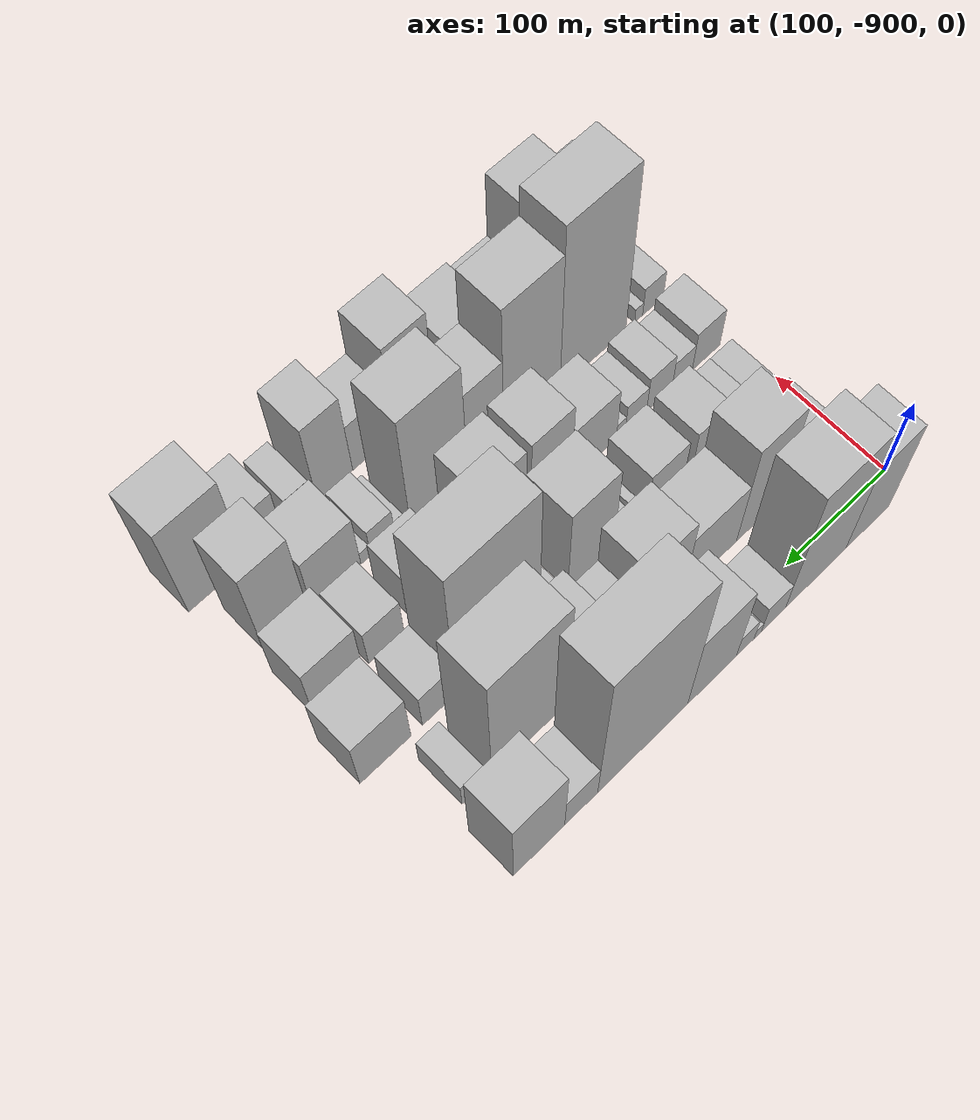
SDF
<sdf version="1.6">
 <world name="default">
  <model name="building_1">
   <static>1</static>
   <pose>100.0000 -858.8363 0 0.000000 0.000000 0.000000</pose>
   <link name="link">
    <pose>0 0 63.00 0 0 0</pose>
    <collision name="collision"><geometry><box><size>40.0000 44.3274 126.0000</size></box></geometry></collision>
    <visual name="visual">
     <cast_shadows>0</cast_shadows>
     <geometry><box><size>40.0000 44.3274 126.0000</size></box></geometry>
     <material>
      <script>
       <uri>model://HANNAS_wall/materials/scripts</uri>
       <uri>model://HANNAS_wall/materials/textures</uri>
       <name>vrc/HANNAS_wall</name>
      </script>
     </material>
    </visual>
   </link>
  </model>
  <model name="building_2">
   <static>1</static>
   <pose>100.0000 -806.4350 0 0.000000 0.000000 0.000000</pose>
   <link name="link">
    <pose>0 0 90.00 0 0 0</pose>
    <collision name="collision"><geometry><box><size>40.0000 60.4753 180.0000</size></box></geometry></collision>
    <visual name="visual">
     <cast_shadows>0</cast_shadows>
     <geometry><box><size>40.0000 60.4753 180.0000</size></box></geometry>
     <material>
      <script>
       <uri>model://HANNAS_wall/materials/scripts</uri>
       <uri>model://HANNAS_wall/materials/textures</uri>
       <name>vrc/HANNAS_wall</name>
      </script>
     </material>
    </visual>
   </link>
  </model>
  <model name="building_3">
   <static>1</static>
   <pose>100.0000 -764.4830 0 0.000000 0.000000 0.000000</pose>
   <link name="link">
    <pose>0 0 21.00 0 0 0</pose>
    <collision name="collision"><geometry><box><size>40.0000 23.4287 42.0000</size></box></geometry></collision>
    <visual name="visual">
     <cast_shadows>0</cast_shadows>
     <geometry><box><size>40.0000 23.4287 42.0000</size></box></geometry>
     <material>
      <script>
       <uri>model://HANNAS_wall/materials/scripts</uri>
       <uri>model://HANNAS_wall/materials/textures</uri>
       <name>vrc/HANNAS_wall</name>
      </script>
     </material>
    </visual>
   </link>
  </model>
  <model name="building_4">
   <static>1</static>
   <pose>100.0000 -749.1663 0 0.000000 0.000000 0.000000</pose>
   <link name="link">
    <pose>0 0 7.50 0 0 0</pose>
    <collision name="collision"><geometry><box><size>40.0000 7.2047 15.0000</size></box></geometry></collision>
    <visual name="visual">
     <cast_shadows>0</cast_shadows>
     <geometry><box><size>40.0000 7.2047 15.0000</size></box></geometry>
     <material>
      <script>
       <uri>model://HANNAS_wall/materials/scripts</uri>
       <uri>model://HANNAS_wall/materials/textures</uri>
       <name>vrc/HANNAS_wall</name>
      </script>
     </material>
    </visual>
   </link>
  </model>
  <model name="building_5">
   <static>1</static>
   <pose>100.0000 -736.9335 0 0.000000 0.000000 0.000000</pose>
   <link name="link">
    <pose>0 0 16.50 0 0 0</pose>
    <collision name="collision"><geometry><box><size>40.0000 17.2609 33.0000</size></box></geometry></collision>
    <visual name="visual">
     <cast_shadows>0</cast_shadows>
     <geometry><box><size>40.0000 17.2609 33.0000</size></box></geometry>
     <material>
      <script>
       <uri>model://HANNAS_wall/materials/scripts</uri>
       <uri>model://HANNAS_wall/materials/textures</uri>
       <name>vrc/HANNAS_wall</name>
      </script>
     </material>
    </visual>
   </link>
  </model>
  <model name="building_6">
   <static>1</static>
   <pose>100.0000 -705.0831 0 0.000000 0.000000 0.000000</pose>
   <link name="link">
    <pose>0 0 58.50 0 0 0</pose>
    <collision name="collision"><geometry><box><size>40.0000 46.4398 117.0000</size></box></geometry></collision>
    <visual name="visual">
     <cast_shadows>0</cast_shadows>
     <geometry><box><size>40.0000 46.4398 117.0000</size></box></geometry>
     <material>
      <script>
       <uri>model://HANNAS_wall/materials/scripts</uri>
       <uri>model://HANNAS_wall/materials/textures</uri>
       <name>vrc/HANNAS_wall</name>
      </script>
     </material>
    </visual>
   </link>
  </model>
  <model name="building_7">
   <static>1</static>
   <pose>100.0000 -640.3496 0 0.000000 0.000000 0.000000</pose>
   <link name="link">
    <pose>0 0 111.00 0 0 0</pose>
    <collision name="collision"><geometry><box><size>40.0000 83.0273 222.0000</size></box></geometry></collision>
    <visual name="visual">
     <cast_shadows>0</cast_shadows>
     <geometry><box><size>40.0000 83.0273 222.0000</size></box></geometry>
     <material>
      <script>
       <uri>model://HANNAS_wall/materials/scripts</uri>
       <uri>model://HANNAS_wall/materials/textures</uri>
       <name>vrc/HANNAS_wall</name>
      </script>
     </material>
    </visual>
   </link>
  </model>
  <model name="building_8">
   <static>1</static>
   <pose>100.0000 -584.0947 0 0.000000 0.000000 0.000000</pose>
   <link name="link">
    <pose>0 0 27.00 0 0 0</pose>
    <collision name="collision"><geometry><box><size>40.0000 29.4825 54.0000</size></box></geometry></collision>
    <visual name="visual">
     <cast_shadows>0</cast_shadows>
     <geometry><box><size>40.0000 29.4825 54.0000</size></box></geometry>
     <material>
      <script>
       <uri>model://HANNAS_wall/materials/scripts</uri>
       <uri>model://HANNAS_wall/materials/textures</uri>
       <name>vrc/HANNAS_wall</name>
      </script>
     </material>
    </visual>
   </link>
  </model>
  <model name="building_9">
   <static>1</static>
   <pose>100.0000 -546.7475 0 0.000000 0.000000 0.000000</pose>
   <link name="link">
    <pose>0 0 57.00 0 0 0</pose>
    <collision name="collision"><geometry><box><size>40.0000 45.2120 114.0000</size></box></geometry></collision>
    <visual name="visual">
     <cast_shadows>0</cast_shadows>
     <geometry><box><size>40.0000 45.2120 114.0000</size></box></geometry>
     <material>
      <script>
       <uri>model://HANNAS_wall/materials/scripts</uri>
       <uri>model://HANNAS_wall/materials/textures</uri>
       <name>vrc/HANNAS_wall</name>
      </script>
     </material>
    </visual>
   </link>
  </model>
  <model name="building_48">
   <static>1</static>
   <pose>155.0000 -880.5928 0 0.000000 0.000000 0.000000</pose>
   <link name="link">
    <pose>0 0 16.50 0 0 0</pose>
    <collision name="collision"><geometry><box><size>40.0000 18.8144 33.0000</size></box></geometry></collision>
    <visual name="visual">
     <cast_shadows>0</cast_shadows>
     <geometry><box><size>40.0000 18.8144 33.0000</size></box></geometry>
     <material>
      <script>
       <uri>model://HANNAS_wall/materials/scripts</uri>
       <uri>model://HANNAS_wall/materials/textures</uri>
       <name>vrc/HANNAS_wall</name>
      </script>
     </material>
    </visual>
   </link>
  </model>
  <model name="building_49">
   <static>1</static>
   <pose>155.0000 -852.6355 0 0.000000 0.000000 0.000000</pose>
   <link name="link">
    <pose>0 0 36.00 0 0 0</pose>
    <collision name="collision"><geometry><box><size>40.0000 37.1003 72.0000</size></box></geometry></collision>
    <visual name="visual">
     <cast_shadows>0</cast_shadows>
     <geometry><box><size>40.0000 37.1003 72.0000</size></box></geometry>
     <material>
      <script>
       <uri>model://HANNAS_wall/materials/scripts</uri>
       <uri>model://HANNAS_wall/materials/textures</uri>
       <name>vrc/HANNAS_wall</name>
      </script>
     </material>
    </visual>
   </link>
  </model>
  <model name="building_50">
   <static>1</static>
   <pose>155.0000 -809.5577 0 0.000000 0.000000 0.000000</pose>
   <link name="link">
    <pose>0 0 70.50 0 0 0</pose>
    <collision name="collision"><geometry><box><size>40.0000 43.0553 141.0000</size></box></geometry></collision>
    <visual name="visual">
     <cast_shadows>0</cast_shadows>
     <geometry><box><size>40.0000 43.0553 141.0000</size></box></geometry>
     <material>
      <script>
       <uri>model://HANNAS_wall/materials/scripts</uri>
       <uri>model://HANNAS_wall/materials/textures</uri>
       <name>vrc/HANNAS_wall</name>
      </script>
     </material>
    </visual>
   </link>
  </model>
  <model name="building_51">
   <static>1</static>
   <pose>155.0000 -762.1314 0 0.000000 0.000000 0.000000</pose>
   <link name="link">
    <pose>0 0 45.00 0 0 0</pose>
    <collision name="collision"><geometry><box><size>40.0000 51.7973 90.0000</size></box></geometry></collision>
    <visual name="visual">
     <cast_shadows>0</cast_shadows>
     <geometry><box><size>40.0000 51.7973 90.0000</size></box></geometry>
     <material>
      <script>
       <uri>model://HANNAS_wall/materials/scripts</uri>
       <uri>model://HANNAS_wall/materials/textures</uri>
       <name>vrc/HANNAS_wall</name>
      </script>
     </material>
    </visual>
   </link>
  </model>
  <model name="building_52">
   <static>1</static>
   <pose>155.0000 -714.4206 0 0.000000 0.000000 0.000000</pose>
   <link name="link">
    <pose>0 0 58.50 0 0 0</pose>
    <collision name="collision"><geometry><box><size>40.0000 43.6243 117.0000</size></box></geometry></collision>
    <visual name="visual">
     <cast_shadows>0</cast_shadows>
     <geometry><box><size>40.0000 43.6243 117.0000</size></box></geometry>
     <material>
      <script>
       <uri>model://HANNAS_wall/materials/scripts</uri>
       <uri>model://HANNAS_wall/materials/textures</uri>
       <name>vrc/HANNAS_wall</name>
      </script>
     </material>
    </visual>
   </link>
  </model>
  <model name="building_53">
   <static>1</static>
   <pose>155.0000 -676.4855 0 0.000000 0.000000 0.000000</pose>
   <link name="link">
    <pose>0 0 31.50 0 0 0</pose>
    <collision name="collision"><geometry><box><size>40.0000 32.2459 63.0000</size></box></geometry></collision>
    <visual name="visual">
     <cast_shadows>0</cast_shadows>
     <geometry><box><size>40.0000 32.2459 63.0000</size></box></geometry>
     <material>
      <script>
       <uri>model://HANNAS_wall/materials/scripts</uri>
       <uri>model://HANNAS_wall/materials/textures</uri>
       <name>vrc/HANNAS_wall</name>
      </script>
     </material>
    </visual>
   </link>
  </model>
  <model name="building_54">
   <static>1</static>
   <pose>155.0000 -643.7673 0 0.000000 0.000000 0.000000</pose>
   <link name="link">
    <pose>0 0 52.50 0 0 0</pose>
    <collision name="collision"><geometry><box><size>40.0000 33.1904 105.0000</size></box></geometry></collision>
    <visual name="visual">
     <cast_shadows>0</cast_shadows>
     <geometry><box><size>40.0000 33.1904 105.0000</size></box></geometry>
     <material>
      <script>
       <uri>model://HANNAS_wall/materials/scripts</uri>
       <uri>model://HANNAS_wall/materials/textures</uri>
       <name>vrc/HANNAS_wall</name>
      </script>
     </material>
    </visual>
   </link>
  </model>
  <model name="building_55">
   <static>1</static>
   <pose>155.0000 -593.0273 0 0.000000 0.000000 0.000000</pose>
   <link name="link">
    <pose>0 0 90.00 0 0 0</pose>
    <collision name="collision"><geometry><box><size>40.0000 68.2895 180.0000</size></box></geometry></collision>
    <visual name="visual">
     <cast_shadows>0</cast_shadows>
     <geometry><box><size>40.0000 68.2895 180.0000</size></box></geometry>
     <material>
      <script>
       <uri>model://HANNAS_wall/materials/scripts</uri>
       <uri>model://HANNAS_wall/materials/textures</uri>
       <name>vrc/HANNAS_wall</name>
      </script>
     </material>
    </visual>
   </link>
  </model>
  <model name="building_56">
   <static>1</static>
   <pose>155.0000 -542.8189 0 0.000000 0.000000 0.000000</pose>
   <link name="link">
    <pose>0 0 19.50 0 0 0</pose>
    <collision name="collision"><geometry><box><size>40.0000 20.1275 39.0000</size></box></geometry></collision>
    <visual name="visual">
     <cast_shadows>0</cast_shadows>
     <geometry><box><size>40.0000 20.1275 39.0000</size></box></geometry>
     <material>
      <script>
       <uri>model://HANNAS_wall/materials/scripts</uri>
       <uri>model://HANNAS_wall/materials/textures</uri>
       <name>vrc/HANNAS_wall</name>
      </script>
     </material>
    </visual>
   </link>
  </model>
  <model name="building_100">
   <static>1</static>
   <pose>210.0000 -869.2173 0 0.000000 0.000000 0.000000</pose>
   <link name="link">
    <pose>0 0 21.00 0 0 0</pose>
    <collision name="collision"><geometry><box><size>40.0000 21.5654 42.0000</size></box></geometry></collision>
    <visual name="visual">
     <cast_shadows>0</cast_shadows>
     <geometry><box><size>40.0000 21.5654 42.0000</size></box></geometry>
     <material>
      <script>
       <uri>model://HANNAS_wall/materials/scripts</uri>
       <uri>model://HANNAS_wall/materials/textures</uri>
       <name>vrc/HANNAS_wall</name>
      </script>
     </material>
    </visual>
   </link>
  </model>
  <model name="building_101">
   <static>1</static>
   <pose>210.0000 -846.8099 0 0.000000 0.000000 0.000000</pose>
   <link name="link">
    <pose>0 0 21.00 0 0 0</pose>
    <collision name="collision"><geometry><box><size>40.0000 23.2495 42.0000</size></box></geometry></collision>
    <visual name="visual">
     <cast_shadows>0</cast_shadows>
     <geometry><box><size>40.0000 23.2495 42.0000</size></box></geometry>
     <material>
      <script>
       <uri>model://HANNAS_wall/materials/scripts</uri>
       <uri>model://HANNAS_wall/materials/textures</uri>
       <name>vrc/HANNAS_wall</name>
      </script>
     </material>
    </visual>
   </link>
  </model>
  <model name="building_102">
   <static>1</static>
   <pose>210.0000 -818.6937 0 0.000000 0.000000 0.000000</pose>
   <link name="link">
    <pose>0 0 31.50 0 0 0</pose>
    <collision name="collision"><geometry><box><size>40.0000 32.9828 63.0000</size></box></geometry></collision>
    <visual name="visual">
     <cast_shadows>0</cast_shadows>
     <geometry><box><size>40.0000 32.9828 63.0000</size></box></geometry>
     <material>
      <script>
       <uri>model://HANNAS_wall/materials/scripts</uri>
       <uri>model://HANNAS_wall/materials/textures</uri>
       <name>vrc/HANNAS_wall</name>
      </script>
     </material>
    </visual>
   </link>
  </model>
  <model name="building_103">
   <static>1</static>
   <pose>210.0000 -776.3366 0 0.000000 0.000000 0.000000</pose>
   <link name="link">
    <pose>0 0 31.50 0 0 0</pose>
    <collision name="collision"><geometry><box><size>40.0000 35.7315 63.0000</size></box></geometry></collision>
    <visual name="visual">
     <cast_shadows>0</cast_shadows>
     <geometry><box><size>40.0000 35.7315 63.0000</size></box></geometry>
     <material>
      <script>
       <uri>model://HANNAS_wall/materials/scripts</uri>
       <uri>model://HANNAS_wall/materials/textures</uri>
       <name>vrc/HANNAS_wall</name>
      </script>
     </material>
    </visual>
   </link>
  </model>
  <model name="building_104">
   <static>1</static>
   <pose>210.0000 -754.9512 0 0.000000 0.000000 0.000000</pose>
   <link name="link">
    <pose>0 0 7.50 0 0 0</pose>
    <collision name="collision"><geometry><box><size>40.0000 7.0394 15.0000</size></box></geometry></collision>
    <visual name="visual">
     <cast_shadows>0</cast_shadows>
     <geometry><box><size>40.0000 7.0394 15.0000</size></box></geometry>
     <material>
      <script>
       <uri>model://HANNAS_wall/materials/scripts</uri>
       <uri>model://HANNAS_wall/materials/textures</uri>
       <name>vrc/HANNAS_wall</name>
      </script>
     </material>
    </visual>
   </link>
  </model>
  <model name="building_105">
   <static>1</static>
   <pose>210.0000 -734.7766 0 0.000000 0.000000 0.000000</pose>
   <link name="link">
    <pose>0 0 15.00 0 0 0</pose>
    <collision name="collision"><geometry><box><size>40.0000 17.3097 30.0000</size></box></geometry></collision>
    <visual name="visual">
     <cast_shadows>0</cast_shadows>
     <geometry><box><size>40.0000 17.3097 30.0000</size></box></geometry>
     <material>
      <script>
       <uri>model://HANNAS_wall/materials/scripts</uri>
       <uri>model://HANNAS_wall/materials/textures</uri>
       <name>vrc/HANNAS_wall</name>
      </script>
     </material>
    </visual>
   </link>
  </model>
  <model name="building_106">
   <static>1</static>
   <pose>210.0000 -704.3677 0 0.000000 0.000000 0.000000</pose>
   <link name="link">
    <pose>0 0 61.50 0 0 0</pose>
    <collision name="collision"><geometry><box><size>40.0000 43.5081 123.0000</size></box></geometry></collision>
    <visual name="visual">
     <cast_shadows>0</cast_shadows>
     <geometry><box><size>40.0000 43.5081 123.0000</size></box></geometry>
     <material>
      <script>
       <uri>model://HANNAS_wall/materials/scripts</uri>
       <uri>model://HANNAS_wall/materials/textures</uri>
       <name>vrc/HANNAS_wall</name>
      </script>
     </material>
    </visual>
   </link>
  </model>
  <model name="building_107">
   <static>1</static>
   <pose>210.0000 -669.0042 0 0.000000 0.000000 0.000000</pose>
   <link name="link">
    <pose>0 0 13.50 0 0 0</pose>
    <collision name="collision"><geometry><box><size>40.0000 11.2189 27.0000</size></box></geometry></collision>
    <visual name="visual">
     <cast_shadows>0</cast_shadows>
     <geometry><box><size>40.0000 11.2189 27.0000</size></box></geometry>
     <material>
      <script>
       <uri>model://HANNAS_wall/materials/scripts</uri>
       <uri>model://HANNAS_wall/materials/textures</uri>
       <name>vrc/HANNAS_wall</name>
      </script>
     </material>
    </visual>
   </link>
  </model>
  <model name="building_108">
   <static>1</static>
   <pose>210.0000 -618.1021 0 0.000000 0.000000 0.000000</pose>
   <link name="link">
    <pose>0 0 102.00 0 0 0</pose>
    <collision name="collision"><geometry><box><size>40.0000 76.5854 204.0000</size></box></geometry></collision>
    <visual name="visual">
     <cast_shadows>0</cast_shadows>
     <geometry><box><size>40.0000 76.5854 204.0000</size></box></geometry>
     <material>
      <script>
       <uri>model://HANNAS_wall/materials/scripts</uri>
       <uri>model://HANNAS_wall/materials/textures</uri>
       <name>vrc/HANNAS_wall</name>
      </script>
     </material>
    </visual>
   </link>
  </model>
  <model name="building_109">
   <static>1</static>
   <pose>210.0000 -564.9340 0 0.000000 0.000000 0.000000</pose>
   <link name="link">
    <pose>0 0 27.00 0 0 0</pose>
    <collision name="collision"><geometry><box><size>40.0000 29.7506 54.0000</size></box></geometry></collision>
    <visual name="visual">
     <cast_shadows>0</cast_shadows>
     <geometry><box><size>40.0000 29.7506 54.0000</size></box></geometry>
     <material>
      <script>
       <uri>model://HANNAS_wall/materials/scripts</uri>
       <uri>model://HANNAS_wall/materials/textures</uri>
       <name>vrc/HANNAS_wall</name>
      </script>
     </material>
    </visual>
   </link>
  </model>
  <model name="building_110">
   <static>1</static>
   <pose>210.0000 -517.8500 0 0.000000 0.000000 0.000000</pose>
   <link name="link">
    <pose>0 0 37.50 0 0 0</pose>
    <collision name="collision"><geometry><box><size>40.0000 44.4174 75.0000</size></box></geometry></collision>
    <visual name="visual">
     <cast_shadows>0</cast_shadows>
     <geometry><box><size>40.0000 44.4174 75.0000</size></box></geometry>
     <material>
      <script>
       <uri>model://HANNAS_wall/materials/scripts</uri>
       <uri>model://HANNAS_wall/materials/textures</uri>
       <name>vrc/HANNAS_wall</name>
      </script>
     </material>
    </visual>
   </link>
  </model>
  <model name="building_153">
   <static>1</static>
   <pose>265.0000 -875.8270 0 0.000000 0.000000 0.000000</pose>
   <link name="link">
    <pose>0 0 25.50 0 0 0</pose>
    <collision name="collision"><geometry><box><size>40.0000 28.3460 51.0000</size></box></geometry></collision>
    <visual name="visual">
     <cast_shadows>0</cast_shadows>
     <geometry><box><size>40.0000 28.3460 51.0000</size></box></geometry>
     <material>
      <script>
       <uri>model://HANNAS_wall/materials/scripts</uri>
       <uri>model://HANNAS_wall/materials/textures</uri>
       <name>vrc/HANNAS_wall</name>
      </script>
     </material>
    </visual>
   </link>
  </model>
  <model name="building_154">
   <static>1</static>
   <pose>265.0000 -851.3263 0 0.000000 0.000000 0.000000</pose>
   <link name="link">
    <pose>0 0 18.00 0 0 0</pose>
    <collision name="collision"><geometry><box><size>40.0000 20.6553 36.0000</size></box></geometry></collision>
    <visual name="visual">
     <cast_shadows>0</cast_shadows>
     <geometry><box><size>40.0000 20.6553 36.0000</size></box></geometry>
     <material>
      <script>
       <uri>model://HANNAS_wall/materials/scripts</uri>
       <uri>model://HANNAS_wall/materials/textures</uri>
       <name>vrc/HANNAS_wall</name>
      </script>
     </material>
    </visual>
   </link>
  </model>
  <model name="building_155">
   <static>1</static>
   <pose>265.0000 -828.1663 0 0.000000 0.000000 0.000000</pose>
   <link name="link">
    <pose>0 0 24.00 0 0 0</pose>
    <collision name="collision"><geometry><box><size>40.0000 25.6647 48.0000</size></box></geometry></collision>
    <visual name="visual">
     <cast_shadows>0</cast_shadows>
     <geometry><box><size>40.0000 25.6647 48.0000</size></box></geometry>
     <material>
      <script>
       <uri>model://HANNAS_wall/materials/scripts</uri>
       <uri>model://HANNAS_wall/materials/textures</uri>
       <name>vrc/HANNAS_wall</name>
      </script>
     </material>
    </visual>
   </link>
  </model>
  <model name="building_156">
   <static>1</static>
   <pose>265.0000 -804.7749 0 0.000000 0.000000 0.000000</pose>
   <link name="link">
    <pose>0 0 18.00 0 0 0</pose>
    <collision name="collision"><geometry><box><size>40.0000 21.1180 36.0000</size></box></geometry></collision>
    <visual name="visual">
     <cast_shadows>0</cast_shadows>
     <geometry><box><size>40.0000 21.1180 36.0000</size></box></geometry>
     <material>
      <script>
       <uri>model://HANNAS_wall/materials/scripts</uri>
       <uri>model://HANNAS_wall/materials/textures</uri>
       <name>vrc/HANNAS_wall</name>
      </script>
     </material>
    </visual>
   </link>
  </model>
  <model name="building_157">
   <static>1</static>
   <pose>265.0000 -789.6789 0 0.000000 0.000000 0.000000</pose>
   <link name="link">
    <pose>0 0 10.50 0 0 0</pose>
    <collision name="collision"><geometry><box><size>40.0000 9.0739 21.0000</size></box></geometry></collision>
    <visual name="visual">
     <cast_shadows>0</cast_shadows>
     <geometry><box><size>40.0000 9.0739 21.0000</size></box></geometry>
     <material>
      <script>
       <uri>model://HANNAS_wall/materials/scripts</uri>
       <uri>model://HANNAS_wall/materials/textures</uri>
       <name>vrc/HANNAS_wall</name>
      </script>
     </material>
    </visual>
   </link>
  </model>
  <model name="building_158">
   <static>1</static>
   <pose>265.0000 -764.7316 0 0.000000 0.000000 0.000000</pose>
   <link name="link">
    <pose>0 0 36.00 0 0 0</pose>
    <collision name="collision"><geometry><box><size>40.0000 40.8207 72.0000</size></box></geometry></collision>
    <visual name="visual">
     <cast_shadows>0</cast_shadows>
     <geometry><box><size>40.0000 40.8207 72.0000</size></box></geometry>
     <material>
      <script>
       <uri>model://HANNAS_wall/materials/scripts</uri>
       <uri>model://HANNAS_wall/materials/textures</uri>
       <name>vrc/HANNAS_wall</name>
      </script>
     </material>
    </visual>
   </link>
  </model>
  <model name="building_159">
   <static>1</static>
   <pose>265.0000 -722.0174 0 0.000000 0.000000 0.000000</pose>
   <link name="link">
    <pose>0 0 55.50 0 0 0</pose>
    <collision name="collision"><geometry><box><size>40.0000 38.6078 111.0000</size></box></geometry></collision>
    <visual name="visual">
     <cast_shadows>0</cast_shadows>
     <geometry><box><size>40.0000 38.6078 111.0000</size></box></geometry>
     <material>
      <script>
       <uri>model://HANNAS_wall/materials/scripts</uri>
       <uri>model://HANNAS_wall/materials/textures</uri>
       <name>vrc/HANNAS_wall</name>
      </script>
     </material>
    </visual>
   </link>
  </model>
  <model name="building_160">
   <static>1</static>
   <pose>265.0000 -677.5116 0 0.000000 0.000000 0.000000</pose>
   <link name="link">
    <pose>0 0 54.00 0 0 0</pose>
    <collision name="collision"><geometry><box><size>40.0000 42.4038 108.0000</size></box></geometry></collision>
    <visual name="visual">
     <cast_shadows>0</cast_shadows>
     <geometry><box><size>40.0000 42.4038 108.0000</size></box></geometry>
     <material>
      <script>
       <uri>model://HANNAS_wall/materials/scripts</uri>
       <uri>model://HANNAS_wall/materials/textures</uri>
       <name>vrc/HANNAS_wall</name>
      </script>
     </material>
    </visual>
   </link>
  </model>
  <model name="building_161">
   <static>1</static>
   <pose>265.0000 -644.4680 0 0.000000 0.000000 0.000000</pose>
   <link name="link">
    <pose>0 0 21.00 0 0 0</pose>
    <collision name="collision"><geometry><box><size>40.0000 23.6833 42.0000</size></box></geometry></collision>
    <visual name="visual">
     <cast_shadows>0</cast_shadows>
     <geometry><box><size>40.0000 23.6833 42.0000</size></box></geometry>
     <material>
      <script>
       <uri>model://HANNAS_wall/materials/scripts</uri>
       <uri>model://HANNAS_wall/materials/textures</uri>
       <name>vrc/HANNAS_wall</name>
      </script>
     </material>
    </visual>
   </link>
  </model>
  <model name="building_162">
   <static>1</static>
   <pose>265.0000 -613.9187 0 0.000000 0.000000 0.000000</pose>
   <link name="link">
    <pose>0 0 31.50 0 0 0</pose>
    <collision name="collision"><geometry><box><size>40.0000 37.4153 63.0000</size></box></geometry></collision>
    <visual name="visual">
     <cast_shadows>0</cast_shadows>
     <geometry><box><size>40.0000 37.4153 63.0000</size></box></geometry>
     <material>
      <script>
       <uri>model://HANNAS_wall/materials/scripts</uri>
       <uri>model://HANNAS_wall/materials/textures</uri>
       <name>vrc/HANNAS_wall</name>
      </script>
     </material>
    </visual>
   </link>
  </model>
  <model name="building_163">
   <static>1</static>
   <pose>265.0000 -569.3924 0 0.000000 0.000000 0.000000</pose>
   <link name="link">
    <pose>0 0 27.00 0 0 0</pose>
    <collision name="collision"><geometry><box><size>40.0000 31.6373 54.0000</size></box></geometry></collision>
    <visual name="visual">
     <cast_shadows>0</cast_shadows>
     <geometry><box><size>40.0000 31.6373 54.0000</size></box></geometry>
     <material>
      <script>
       <uri>model://HANNAS_wall/materials/scripts</uri>
       <uri>model://HANNAS_wall/materials/textures</uri>
       <name>vrc/HANNAS_wall</name>
      </script>
     </material>
    </visual>
   </link>
  </model>
  <model name="building_164">
   <static>1</static>
   <pose>265.0000 -526.8006 0 0.000000 0.000000 0.000000</pose>
   <link name="link">
    <pose>0 0 37.50 0 0 0</pose>
    <collision name="collision"><geometry><box><size>40.0000 43.5463 75.0000</size></box></geometry></collision>
    <visual name="visual">
     <cast_shadows>0</cast_shadows>
     <geometry><box><size>40.0000 43.5463 75.0000</size></box></geometry>
     <material>
      <script>
       <uri>model://HANNAS_wall/materials/scripts</uri>
       <uri>model://HANNAS_wall/materials/textures</uri>
       <name>vrc/HANNAS_wall</name>
      </script>
     </material>
    </visual>
   </link>
  </model>
  <model name="building_205">
   <static>1</static>
   <pose>320.0000 -879.2579 0 0.000000 0.000000 0.000000</pose>
   <link name="link">
    <pose>0 0 18.00 0 0 0</pose>
    <collision name="collision"><geometry><box><size>40.0000 21.4841 36.0000</size></box></geometry></collision>
    <visual name="visual">
     <cast_shadows>0</cast_shadows>
     <geometry><box><size>40.0000 21.4841 36.0000</size></box></geometry>
     <material>
      <script>
       <uri>model://HANNAS_wall/materials/scripts</uri>
       <uri>model://HANNAS_wall/materials/textures</uri>
       <name>vrc/HANNAS_wall</name>
      </script>
     </material>
    </visual>
   </link>
  </model>
  <model name="building_206">
   <static>1</static>
   <pose>320.0000 -864.4143 0 0.000000 0.000000 0.000000</pose>
   <link name="link">
    <pose>0 0 9.00 0 0 0</pose>
    <collision name="collision"><geometry><box><size>40.0000 8.2031 18.0000</size></box></geometry></collision>
    <visual name="visual">
     <cast_shadows>0</cast_shadows>
     <geometry><box><size>40.0000 8.2031 18.0000</size></box></geometry>
     <material>
      <script>
       <uri>model://HANNAS_wall/materials/scripts</uri>
       <uri>model://HANNAS_wall/materials/textures</uri>
       <name>vrc/HANNAS_wall</name>
      </script>
     </material>
    </visual>
   </link>
  </model>
  <model name="building_207">
   <static>1</static>
   <pose>320.0000 -818.2786 0 0.000000 0.000000 0.000000</pose>
   <link name="link">
    <pose>0 0 105.00 0 0 0</pose>
    <collision name="collision"><geometry><box><size>40.0000 66.0683 210.0000</size></box></geometry></collision>
    <visual name="visual">
     <cast_shadows>0</cast_shadows>
     <geometry><box><size>40.0000 66.0683 210.0000</size></box></geometry>
     <material>
      <script>
       <uri>model://HANNAS_wall/materials/scripts</uri>
       <uri>model://HANNAS_wall/materials/textures</uri>
       <name>vrc/HANNAS_wall</name>
      </script>
     </material>
    </visual>
   </link>
  </model>
  <model name="building_208">
   <static>1</static>
   <pose>320.0000 -757.9306 0 0.000000 0.000000 0.000000</pose>
   <link name="link">
    <pose>0 0 88.50 0 0 0</pose>
    <collision name="collision"><geometry><box><size>40.0000 54.6278 177.0000</size></box></geometry></collision>
    <visual name="visual">
     <cast_shadows>0</cast_shadows>
     <geometry><box><size>40.0000 54.6278 177.0000</size></box></geometry>
     <material>
      <script>
       <uri>model://HANNAS_wall/materials/scripts</uri>
       <uri>model://HANNAS_wall/materials/textures</uri>
       <name>vrc/HANNAS_wall</name>
      </script>
     </material>
    </visual>
   </link>
  </model>
  <model name="building_209">
   <static>1</static>
   <pose>320.0000 -713.2587 0 0.000000 0.000000 0.000000</pose>
   <link name="link">
    <pose>0 0 55.50 0 0 0</pose>
    <collision name="collision"><geometry><box><size>40.0000 34.7159 111.0000</size></box></geometry></collision>
    <visual name="visual">
     <cast_shadows>0</cast_shadows>
     <geometry><box><size>40.0000 34.7159 111.0000</size></box></geometry>
     <material>
      <script>
       <uri>model://HANNAS_wall/materials/scripts</uri>
       <uri>model://HANNAS_wall/materials/textures</uri>
       <name>vrc/HANNAS_wall</name>
      </script>
     </material>
    </visual>
   </link>
  </model>
  <model name="building_210">
   <static>1</static>
   <pose>320.0000 -668.7923 0 0.000000 0.000000 0.000000</pose>
   <link name="link">
    <pose>0 0 75.00 0 0 0</pose>
    <collision name="collision"><geometry><box><size>40.0000 54.2169 150.0000</size></box></geometry></collision>
    <visual name="visual">
     <cast_shadows>0</cast_shadows>
     <geometry><box><size>40.0000 54.2169 150.0000</size></box></geometry>
     <material>
      <script>
       <uri>model://HANNAS_wall/materials/scripts</uri>
       <uri>model://HANNAS_wall/materials/textures</uri>
       <name>vrc/HANNAS_wall</name>
      </script>
     </material>
    </visual>
   </link>
  </model>
  <model name="building_211">
   <static>1</static>
   <pose>320.0000 -632.3121 0 0.000000 0.000000 0.000000</pose>
   <link name="link">
    <pose>0 0 10.50 0 0 0</pose>
    <collision name="collision"><geometry><box><size>40.0000 8.7435 21.0000</size></box></geometry></collision>
    <visual name="visual">
     <cast_shadows>0</cast_shadows>
     <geometry><box><size>40.0000 8.7435 21.0000</size></box></geometry>
     <material>
      <script>
       <uri>model://HANNAS_wall/materials/scripts</uri>
       <uri>model://HANNAS_wall/materials/textures</uri>
       <name>vrc/HANNAS_wall</name>
      </script>
     </material>
    </visual>
   </link>
  </model>
  <model name="building_212">
   <static>1</static>
   <pose>320.0000 -616.8606 0 0.000000 0.000000 0.000000</pose>
   <link name="link">
    <pose>0 0 19.50 0 0 0</pose>
    <collision name="collision"><geometry><box><size>40.0000 22.1596 39.0000</size></box></geometry></collision>
    <visual name="visual">
     <cast_shadows>0</cast_shadows>
     <geometry><box><size>40.0000 22.1596 39.0000</size></box></geometry>
     <material>
      <script>
       <uri>model://HANNAS_wall/materials/scripts</uri>
       <uri>model://HANNAS_wall/materials/textures</uri>
       <name>vrc/HANNAS_wall</name>
      </script>
     </material>
    </visual>
   </link>
  </model>
  <model name="building_213">
   <static>1</static>
   <pose>320.0000 -601.3759 0 0.000000 0.000000 0.000000</pose>
   <link name="link">
    <pose>0 0 9.00 0 0 0</pose>
    <collision name="collision"><geometry><box><size>40.0000 8.8097 18.0000</size></box></geometry></collision>
    <visual name="visual">
     <cast_shadows>0</cast_shadows>
     <geometry><box><size>40.0000 8.8097 18.0000</size></box></geometry>
     <material>
      <script>
       <uri>model://HANNAS_wall/materials/scripts</uri>
       <uri>model://HANNAS_wall/materials/textures</uri>
       <name>vrc/HANNAS_wall</name>
      </script>
     </material>
    </visual>
   </link>
  </model>
  <model name="building_214">
   <static>1</static>
   <pose>320.0000 -574.9477 0 0.000000 0.000000 0.000000</pose>
   <link name="link">
    <pose>0 0 37.50 0 0 0</pose>
    <collision name="collision"><geometry><box><size>40.0000 44.0468 75.0000</size></box></geometry></collision>
    <visual name="visual">
     <cast_shadows>0</cast_shadows>
     <geometry><box><size>40.0000 44.0468 75.0000</size></box></geometry>
     <material>
      <script>
       <uri>model://HANNAS_wall/materials/scripts</uri>
       <uri>model://HANNAS_wall/materials/textures</uri>
       <name>vrc/HANNAS_wall</name>
      </script>
     </material>
    </visual>
   </link>
  </model>
  <model name="building_215">
   <static>1</static>
   <pose>320.0000 -530.4421 0 0.000000 0.000000 0.000000</pose>
   <link name="link">
    <pose>0 0 61.50 0 0 0</pose>
    <collision name="collision"><geometry><box><size>40.0000 38.9644 123.0000</size></box></geometry></collision>
    <visual name="visual">
     <cast_shadows>0</cast_shadows>
     <geometry><box><size>40.0000 38.9644 123.0000</size></box></geometry>
     <material>
      <script>
       <uri>model://HANNAS_wall/materials/scripts</uri>
       <uri>model://HANNAS_wall/materials/textures</uri>
       <name>vrc/HANNAS_wall</name>
      </script>
     </material>
    </visual>
   </link>
  </model>
  <model name="building_262">
   <static>1</static>
   <pose>375.0000 -870.8576 0 0.000000 0.000000 0.000000</pose>
   <link name="link">
    <pose>0 0 48.00 0 0 0</pose>
    <collision name="collision"><geometry><box><size>40.0000 38.2849 96.0000</size></box></geometry></collision>
    <visual name="visual">
     <cast_shadows>0</cast_shadows>
     <geometry><box><size>40.0000 38.2849 96.0000</size></box></geometry>
     <material>
      <script>
       <uri>model://HANNAS_wall/materials/scripts</uri>
       <uri>model://HANNAS_wall/materials/textures</uri>
       <name>vrc/HANNAS_wall</name>
      </script>
     </material>
    </visual>
   </link>
  </model>
  <model name="building_263">
   <static>1</static>
   <pose>375.0000 -829.8586 0 0.000000 0.000000 0.000000</pose>
   <link name="link">
    <pose>0 0 70.50 0 0 0</pose>
    <collision name="collision"><geometry><box><size>40.0000 43.7131 141.0000</size></box></geometry></collision>
    <visual name="visual">
     <cast_shadows>0</cast_shadows>
     <geometry><box><size>40.0000 43.7131 141.0000</size></box></geometry>
     <material>
      <script>
       <uri>model://HANNAS_wall/materials/scripts</uri>
       <uri>model://HANNAS_wall/materials/textures</uri>
       <name>vrc/HANNAS_wall</name>
      </script>
     </material>
    </visual>
   </link>
  </model>
  <model name="building_264">
   <static>1</static>
   <pose>375.0000 -788.9601 0 0.000000 0.000000 0.000000</pose>
   <link name="link">
    <pose>0 0 33.00 0 0 0</pose>
    <collision name="collision"><geometry><box><size>40.0000 38.0839 66.0000</size></box></geometry></collision>
    <visual name="visual">
     <cast_shadows>0</cast_shadows>
     <geometry><box><size>40.0000 38.0839 66.0000</size></box></geometry>
     <material>
      <script>
       <uri>model://HANNAS_wall/materials/scripts</uri>
       <uri>model://HANNAS_wall/materials/textures</uri>
       <name>vrc/HANNAS_wall</name>
      </script>
     </material>
    </visual>
   </link>
  </model>
  <model name="building_265">
   <static>1</static>
   <pose>375.0000 -748.1830 0 0.000000 0.000000 0.000000</pose>
   <link name="link">
    <pose>0 0 37.50 0 0 0</pose>
    <collision name="collision"><geometry><box><size>40.0000 43.4702 75.0000</size></box></geometry></collision>
    <visual name="visual">
     <cast_shadows>0</cast_shadows>
     <geometry><box><size>40.0000 43.4702 75.0000</size></box></geometry>
     <material>
      <script>
       <uri>model://HANNAS_wall/materials/scripts</uri>
       <uri>model://HANNAS_wall/materials/textures</uri>
       <name>vrc/HANNAS_wall</name>
      </script>
     </material>
    </visual>
   </link>
  </model>
  <model name="building_266">
   <static>1</static>
   <pose>375.0000 -721.3833 0 0.000000 0.000000 0.000000</pose>
   <link name="link">
    <pose>0 0 12.00 0 0 0</pose>
    <collision name="collision"><geometry><box><size>40.0000 10.1291 24.0000</size></box></geometry></collision>
    <visual name="visual">
     <cast_shadows>0</cast_shadows>
     <geometry><box><size>40.0000 10.1291 24.0000</size></box></geometry>
     <material>
      <script>
       <uri>model://HANNAS_wall/materials/scripts</uri>
       <uri>model://HANNAS_wall/materials/textures</uri>
       <name>vrc/HANNAS_wall</name>
      </script>
     </material>
    </visual>
   </link>
  </model>
  <model name="building_267">
   <static>1</static>
   <pose>375.0000 -696.9702 0 0.000000 0.000000 0.000000</pose>
   <link name="link">
    <pose>0 0 61.50 0 0 0</pose>
    <collision name="collision"><geometry><box><size>40.0000 38.6971 123.0000</size></box></geometry></collision>
    <visual name="visual">
     <cast_shadows>0</cast_shadows>
     <geometry><box><size>40.0000 38.6971 123.0000</size></box></geometry>
     <material>
      <script>
       <uri>model://HANNAS_wall/materials/scripts</uri>
       <uri>model://HANNAS_wall/materials/textures</uri>
       <name>vrc/HANNAS_wall</name>
      </script>
     </material>
    </visual>
   </link>
  </model>
  <model name="building_268">
   <static>1</static>
   <pose>375.0000 -658.6562 0 0.000000 0.000000 0.000000</pose>
   <link name="link">
    <pose>0 0 33.00 0 0 0</pose>
    <collision name="collision"><geometry><box><size>40.0000 37.9309 66.0000</size></box></geometry></collision>
    <visual name="visual">
     <cast_shadows>0</cast_shadows>
     <geometry><box><size>40.0000 37.9309 66.0000</size></box></geometry>
     <material>
      <script>
       <uri>model://HANNAS_wall/materials/scripts</uri>
       <uri>model://HANNAS_wall/materials/textures</uri>
       <name>vrc/HANNAS_wall</name>
      </script>
     </material>
    </visual>
   </link>
  </model>
  <model name="building_269">
   <static>1</static>
   <pose>375.0000 -623.2676 0 0.000000 0.000000 0.000000</pose>
   <link name="link">
    <pose>0 0 54.00 0 0 0</pose>
    <collision name="collision"><geometry><box><size>40.0000 32.8463 108.0000</size></box></geometry></collision>
    <visual name="visual">
     <cast_shadows>0</cast_shadows>
     <geometry><box><size>40.0000 32.8463 108.0000</size></box></geometry>
     <material>
      <script>
       <uri>model://HANNAS_wall/materials/scripts</uri>
       <uri>model://HANNAS_wall/materials/textures</uri>
       <name>vrc/HANNAS_wall</name>
      </script>
     </material>
    </visual>
   </link>
  </model>
  <model name="building_270">
   <static>1</static>
   <pose>375.0000 -593.1005 0 0.000000 0.000000 0.000000</pose>
   <link name="link">
    <pose>0 0 19.50 0 0 0</pose>
    <collision name="collision"><geometry><box><size>40.0000 21.4878 39.0000</size></box></geometry></collision>
    <visual name="visual">
     <cast_shadows>0</cast_shadows>
     <geometry><box><size>40.0000 21.4878 39.0000</size></box></geometry>
     <material>
      <script>
       <uri>model://HANNAS_wall/materials/scripts</uri>
       <uri>model://HANNAS_wall/materials/textures</uri>
       <name>vrc/HANNAS_wall</name>
      </script>
     </material>
    </visual>
   </link>
  </model>
  <model name="building_271">
   <static>1</static>
   <pose>375.0000 -559.4932 0 0.000000 0.000000 0.000000</pose>
   <link name="link">
    <pose>0 0 31.50 0 0 0</pose>
    <collision name="collision"><geometry><box><size>40.0000 31.7268 63.0000</size></box></geometry></collision>
    <visual name="visual">
     <cast_shadows>0</cast_shadows>
     <geometry><box><size>40.0000 31.7268 63.0000</size></box></geometry>
     <material>
      <script>
       <uri>model://HANNAS_wall/materials/scripts</uri>
       <uri>model://HANNAS_wall/materials/textures</uri>
       <name>vrc/HANNAS_wall</name>
      </script>
     </material>
    </visual>
   </link>
  </model>
  <model name="building_272">
   <static>1</static>
   <pose>375.0000 -518.3078 0 0.000000 0.000000 0.000000</pose>
   <link name="link">
    <pose>0 0 64.50 0 0 0</pose>
    <collision name="collision"><geometry><box><size>40.0000 50.6442 129.0000</size></box></geometry></collision>
    <visual name="visual">
     <cast_shadows>0</cast_shadows>
     <geometry><box><size>40.0000 50.6442 129.0000</size></box></geometry>
     <material>
      <script>
       <uri>model://HANNAS_wall/materials/scripts</uri>
       <uri>model://HANNAS_wall/materials/textures</uri>
       <name>vrc/HANNAS_wall</name>
      </script>
     </material>
    </visual>
   </link>
  </model>
 </world>
</sdf>
